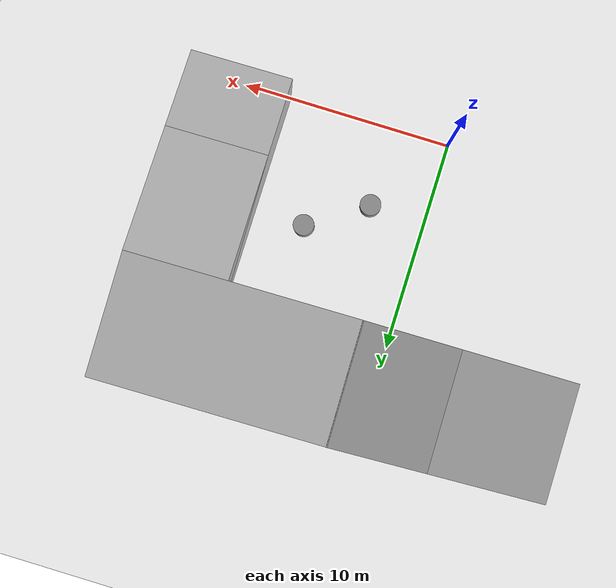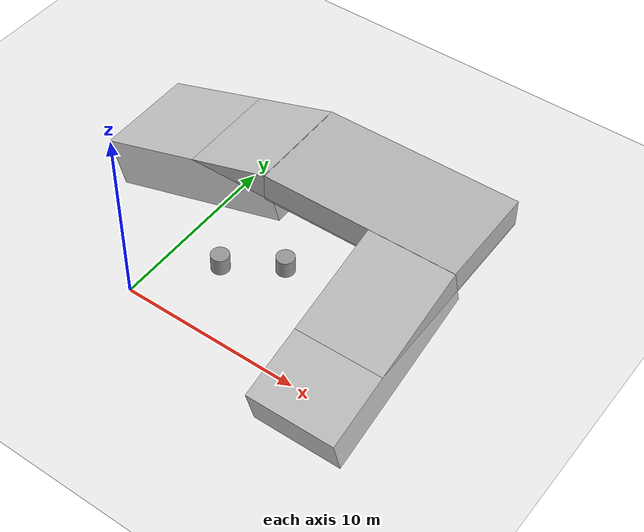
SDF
<sdf version="1.7">
 <world name="default">
  <light name="sun" type="directional">
   <pose>0 0 10 0 -0 0</pose>
   <diffuse>0.8 0.8 0.8 1</diffuse>
   <specular>0.2 0.2 0.2 1</specular>
   <attenuation>
    <range>1000</range>
    <constant>0.9</constant>
    <linear>0.01</linear>
    <quadratic>0.001</quadratic>
   </attenuation>
   <direction>-0.5 0.1 -0.9</direction>
   <spot><inner_angle>0</inner_angle><outer_angle>0</outer_angle><falloff>0</falloff></spot>
  </light>
  <model name="ground_plane">
   <static>1</static>
   <link name="link">
    <collision name="collision">
     <geometry><plane><normal>0 0 1</normal><size>100 100</size></plane></geometry>
     <surface><friction><ode><mu>100</mu><mu2>50</mu2></ode></friction></surface>
    </collision>
    <visual name="visual">
     <cast_shadows>0</cast_shadows>
     <geometry><plane><normal>0 0 1</normal><size>100 100</size></plane></geometry>
     <material>
      <script><uri>file://media/materials/scripts/gazebo.material</uri><name>Gazebo/Grey</name></script>
     </material>
    </visual>
   </link>
  </model>
  <gravity>0 0 -9.8</gravity>
  <magnetic_field>6e-06 2.3e-05 -4.2e-05</magnetic_field>
  <atmosphere type="adiabatic"/>
  <physics type="ode">
   <max_step_size>0.001</max_step_size>
   <real_time_factor>1</real_time_factor>
   <real_time_update_rate>1000</real_time_update_rate>
  </physics>
  <scene><ambient>0.4 0.4 0.4 1</ambient><background>0.7 0.7 0.7 1</background><shadows>1</shadows></scene>
  <audio><device>default</device></audio>
  <spherical_coordinates>
   <surface_model>EARTH_WGS84</surface_model>
   <latitude_deg>0</latitude_deg>
   <longitude_deg>0</longitude_deg>
   <elevation>0</elevation>
   <heading_deg>0</heading_deg>
  </spherical_coordinates>
  <light name="user_directional_light_0" type="directional">
   <pose>-42.4716 1.57167 1 0 -0 0</pose>
   <diffuse>0.5 0.5 0.5 1</diffuse>
   <specular>0.1 0.1 0.1 1</specular>
   <direction>0.1 0.1 -0.9</direction>
   <attenuation>
    <range>20</range>
    <constant>0.5</constant>
    <linear>0.01</linear>
    <quadratic>0.001</quadratic>
   </attenuation>
  </light>
  <light name="user_directional_light_1" type="directional">
   <pose>-42.6011 1.4236 1 0 -0 0</pose>
   <diffuse>0.5 0.5 0.5 1</diffuse>
   <specular>0.1 0.1 0.1 1</specular>
   <direction>0.1 0.1 -0.9</direction>
   <attenuation>
    <range>20</range>
    <constant>0.5</constant>
    <linear>0.01</linear>
    <quadratic>0.001</quadratic>
   </attenuation>
  </light>
  <light name="user_directional_light_2" type="directional">
   <pose>-41.9319 1.54276 1 0 -0 0</pose>
   <diffuse>0.5 0.5 0.5 1</diffuse>
   <specular>0.1 0.1 0.1 1</specular>
   <direction>0.1 0.1 -0.9</direction>
   <attenuation>
    <range>20</range>
    <constant>0.5</constant>
    <linear>0.01</linear>
    <quadratic>0.001</quadratic>
   </attenuation>
  </light>
  <light name="user_directional_light_3" type="directional">
   <pose>-42.4133 1.21213 1 0 -0 0</pose>
   <diffuse>0.5 0.5 0.5 1</diffuse>
   <specular>0.1 0.1 0.1 1</specular>
   <direction>0.1 0.1 -0.9</direction>
   <attenuation>
    <range>20</range>
    <constant>0.5</constant>
    <linear>0.01</linear>
    <quadratic>0.001</quadratic>
   </attenuation>
  </light>
  <light name="user_directional_light_4" type="directional">
   <pose>-42.7377 1.50448 1 0 -0 0</pose>
   <diffuse>0.5 0.5 0.5 1</diffuse>
   <specular>0.1 0.1 0.1 1</specular>
   <direction>0.1 0.1 -0.9</direction>
   <attenuation>
    <range>20</range>
    <constant>0.5</constant>
    <linear>0.01</linear>
    <quadratic>0.001</quadratic>
   </attenuation>
  </light>
  <light name="user_directional_light_5" type="directional">
   <pose>-41.9762 1.54277 1 0 -0 0</pose>
   <diffuse>0.5 0.5 0.5 1</diffuse>
   <specular>0.1 0.1 0.1 1</specular>
   <direction>0.1 0.1 -0.9</direction>
   <attenuation>
    <range>20</range>
    <constant>0.5</constant>
    <linear>0.01</linear>
    <quadratic>0.001</quadratic>
   </attenuation>
  </light>
  <model name="slope_ros2">
   <link name="slope_down">
    <pose>5.93392 0.081427 -0.964279 0 0.248274 0</pose>
    <inertial>
     <inertia><ixx>0</ixx><ixy>0</ixy><ixz>0</ixz><iyy>0</iyy><iyz>0</iyz><izz>0</izz></inertia>
     <mass>0</mass>
    </inertial>
    <visual name="visual">
     <geometry><box><size>10.6012 5.12132 2.52711</size></box></geometry>
     <material><shader type="pixel"/></material>
    </visual>
    <collision name="collision">
     <geometry><box><size>10.6012 5.12132 2.52711</size></box></geometry>
     <surface>
      <friction>
       <ode><mu>1</mu><mu2>1</mu2><fdir1>0 0 0</fdir1><slip1>0</slip1><slip2>0</slip2></ode>
       <torsional>
        <coefficient>1</coefficient>
        <patch_radius>0</patch_radius>
        <surface_radius>0</surface_radius>
        <use_patch_radius>1</use_patch_radius>
        <ode><slip>0</slip></ode>
       </torsional>
      </friction>
      <bounce><restitution_coefficient>0</restitution_coefficient><threshold>1e+06</threshold></bounce>
      <contact>
       <collide_without_contact>0</collide_without_contact>
       <collide_without_contact_bitmask>1</collide_without_contact_bitmask>
       <collide_bitmask>1</collide_bitmask>
       <ode>
        <soft_cfm>0</soft_cfm>
        <soft_erp>0.2</soft_erp>
        <kp>1e+13</kp>
        <kd>1</kd>
        <max_vel>0.01</max_vel>
        <min_depth>0</min_depth>
       </ode>
       <bullet>
        <split_impulse>1</split_impulse>
        <split_impulse_penetration_threshold>-0.01</split_impulse_penetration_threshold>
        <soft_cfm>0</soft_cfm>
        <soft_erp>0.2</soft_erp>
        <kp>1e+13</kp>
        <kd>1</kd>
       </bullet>
      </contact>
     </surface>
    </collision>
   </link>
   <link name="slope_zero">
    <pose>-1.92902 -3.18844 0.7221 0 -0 0</pose>
    <inertial>
     <inertia><ixx>0</ixx><ixy>0</ixy><ixz>0</ixz><iyy>0</iyy><iyz>0</iyz><izz>0</izz></inertia>
     <mass>0</mass>
    </inertial>
    <visual name="visual">
     <geometry><box><size>6.10024 11.649 1.69097</size></box></geometry>
     <material><shader type="pixel"><normal_map>__default__</normal_map></shader></material>
    </visual>
    <collision name="collision">
     <geometry><box><size>6.10024 11.649 1.69097</size></box></geometry>
     <surface>
      <friction>
       <ode><mu>1</mu><mu2>1</mu2><fdir1>0 0 0</fdir1><slip1>0</slip1><slip2>0</slip2></ode>
       <torsional>
        <coefficient>1</coefficient>
        <patch_radius>0</patch_radius>
        <surface_radius>0</surface_radius>
        <use_patch_radius>1</use_patch_radius>
        <ode><slip>0</slip></ode>
       </torsional>
      </friction>
      <bounce><restitution_coefficient>0</restitution_coefficient><threshold>1e+06</threshold></bounce>
      <contact>
       <collide_without_contact>0</collide_without_contact>
       <collide_without_contact_bitmask>1</collide_without_contact_bitmask>
       <collide_bitmask>1</collide_bitmask>
       <ode>
        <soft_cfm>0</soft_cfm>
        <soft_erp>0.2</soft_erp>
        <kp>1e+13</kp>
        <kd>1</kd>
        <max_vel>0.01</max_vel>
        <min_depth>0</min_depth>
       </ode>
       <bullet>
        <split_impulse>1</split_impulse>
        <split_impulse_penetration_threshold>-0.01</split_impulse_penetration_threshold>
        <soft_cfm>0</soft_cfm>
        <soft_erp>0.2</soft_erp>
        <kp>1e+13</kp>
        <kd>1</kd>
       </bullet>
      </contact>
     </surface>
    </collision>
   </link>
   <link name="slope_zero_clone">
    <pose>-1.93376 -14.052 -1.61461 0.312639 -0 0</pose>
    <inertial>
     <inertia><ixx>0</ixx><ixy>0</ixy><ixz>0</ixz><iyy>0</iyy><iyz>0</iyz><izz>0</izz></inertia>
     <mass>0</mass>
    </inertial>
    <visual name="visual">
     <geometry><box><size>6.10024 11.649 2.93132</size></box></geometry>
     <material><shader type="pixel"><normal_map>__default__</normal_map></shader></material>
    </visual>
    <collision name="collision">
     <geometry><box><size>6.10024 11.649 2.93132</size></box></geometry>
     <surface>
      <friction>
       <ode><mu>1</mu><mu2>1</mu2><fdir1>0 0 0</fdir1><slip1>0</slip1><slip2>0</slip2></ode>
       <torsional>
        <coefficient>1</coefficient>
        <patch_radius>0</patch_radius>
        <surface_radius>0</surface_radius>
        <use_patch_radius>1</use_patch_radius>
        <ode><slip>0</slip></ode>
       </torsional>
      </friction>
      <bounce><restitution_coefficient>0</restitution_coefficient><threshold>1e+06</threshold></bounce>
      <contact>
       <collide_without_contact>0</collide_without_contact>
       <collide_without_contact_bitmask>1</collide_without_contact_bitmask>
       <collide_bitmask>1</collide_bitmask>
       <ode>
        <soft_cfm>0</soft_cfm>
        <soft_erp>0.2</soft_erp>
        <kp>1e+13</kp>
        <kd>1</kd>
        <max_vel>0.01</max_vel>
        <min_depth>0</min_depth>
       </ode>
       <bullet>
        <split_impulse>1</split_impulse>
        <split_impulse_penetration_threshold>-0.01</split_impulse_penetration_threshold>
        <soft_cfm>0</soft_cfm>
        <soft_erp>0.2</soft_erp>
        <kp>1e+13</kp>
        <kd>1</kd>
       </bullet>
      </contact>
     </surface>
    </collision>
   </link>
   <static>1</static>
   <pose>10.3955 10.2984 0 0 0 -1.55808</pose>
  </model>
  <model name="unit_cylinder">
   <pose>2.67516 3.81162 0.499993 -3e-06 -4e-06 -0</pose>
   <link name="link">
    <inertial>
     <mass>1</mass>
     <inertia><ixx>0.145833</ixx><ixy>0</ixy><ixz>0</ixz><iyy>0.145833</iyy><iyz>0</iyz><izz>0.125</izz></inertia>
    </inertial>
    <collision name="collision">
     <geometry><cylinder><radius>0.5</radius><length>1</length></cylinder></geometry>
    </collision>
    <visual name="visual">
     <geometry><cylinder><radius>0.5</radius><length>1</length></cylinder></geometry>
     <material>
      <script><name>Gazebo/Grey</name><uri>file://media/materials/scripts/gazebo.material</uri></script>
     </material>
    </visual>
   </link>
  </model>
  <model name="unit_cylinder_0">
   <pose>5.39492 5.6201 0.499997 3e-06 4e-06 -0</pose>
   <link name="link">
    <inertial>
     <mass>1</mass>
     <inertia><ixx>0.145833</ixx><ixy>0</ixy><ixz>0</ixz><iyy>0.145833</iyy><iyz>0</iyz><izz>0.125</izz></inertia>
    </inertial>
    <collision name="collision">
     <geometry><cylinder><radius>0.5</radius><length>1</length></cylinder></geometry>
    </collision>
    <visual name="visual">
     <geometry><cylinder><radius>0.5</radius><length>1</length></cylinder></geometry>
     <material>
      <script><name>Gazebo/Grey</name><uri>file://media/materials/scripts/gazebo.material</uri></script>
     </material>
    </visual>
   </link>
  </model>
 </world>
</sdf>
